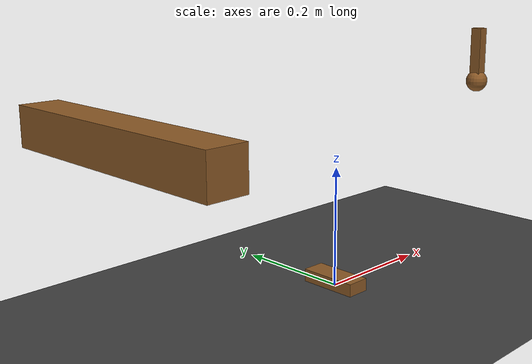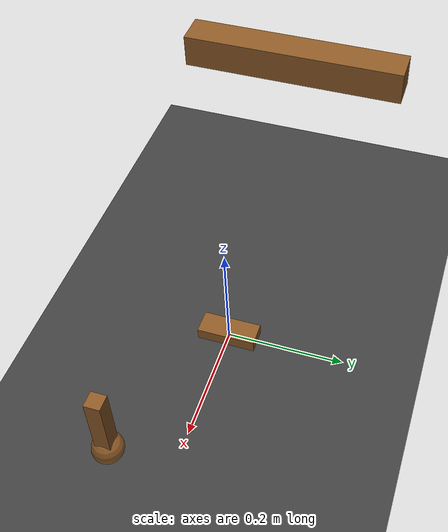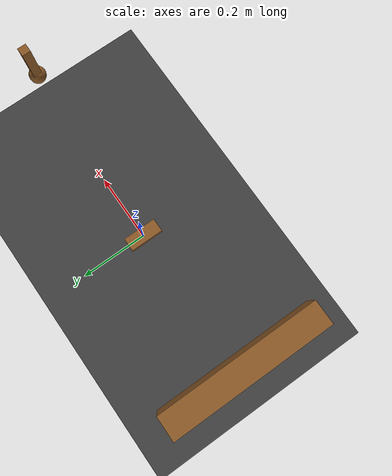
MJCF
<mujoco model="dog_scene">
  <include file="dog.xml"/>

  <statistic center="1 -0.8 1.1" extent=".3"/>

  <visual>
    <headlight diffuse="0.6 0.6 0.6" ambient="0.1 0.1 0.1" specular="0.9 0.9 0.9"/>
    <rgba haze="0.15 0.25 0.35 1"/>
    <global azimuth="140" elevation="-20"/>
  </visual>

  <asset>
    <texture builtin='checker' height='512' name='plane' rgb1='0.2 0.2 0.2' rgb2='0.3 0.3 0.3' type='2d' width='512'/>
    <texture builtin='gradient' height='128' rgb1='0.4 0.6 0.8' rgb2='0 0 0' type='skybox' width='128'/>
    <texture type="skybox" builtin="gradient" rgb1="1 1 1" rgb2="1 1 1" width="800" height="800"/>
    <texture type="2d" name="groundplane" builtin="checker" mark="edge" rgb1="1 1 1" rgb2="1 1 1"
      markrgb="0 0 0" width="300" height="300"/>
    <material name='plane' reflectance='0.000000' texrepeat='1 1' texture='plane' texuniform='true'/>
  </asset>

  <worldbody>
    <geom conaffinity="1" contype="1" condim="3" friction="1 .1 .1" name="floor" pos="0 0 0" size="40 40 0.125" type="plane" material="plane" rgba="0.5 0.5 0.5 1.0"/>
  </worldbody>
</mujoco>

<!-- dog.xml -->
<mujoco model="dog">
  <compiler angle="degree"/>
  <option timestep="0.001" gravity="0 0 -9.81"/>

  <default>
    <geom type="box" size="0.05 0.05 0.05" density="500" rgba="0.55 0.35 0.15 1"/>
  </default>

  <worldbody>
    <!-- Block 2x10x2 + Sphere: box bottom at sphere center -->
    <body name="block_sphere" pos="0.4 0 0.3">
      <freejoint name="block_sphere_free"/>
      <geom name="sphere_geom" type="sphere" size="0.02" pos="0 0 0" rgba="0.55 0.35 0.15 1"/>
      <geom name="block_geom" type="box" size="0.01 0.01 0.05" pos="0 0 0.05" rgba="0.55 0.35 0.15 1"/>
    </body>

    <!-- Block: 6cm x 40cm x 6cm (x x y x h) -->
    <body name="block2" pos="-0.4 0 0.3">
      <freejoint name="block2_free"/>
      <geom name="block2_geom" type="box" size="0.03 0.20 0.03" pos="0 0 0" rgba="0.55 0.35 0.15 1"/>
    </body>

    <!-- Block: 4cm x 10cm x 4cm (x x y x h) -->
    <body name="block3" pos="0 0 0">
      <freejoint name="block3_free"/>
      <geom name="block3_geom" type="box" size="0.02 0.05 0.02" pos="0 0 0" rgba="0.55 0.35 0.15 1"/>
    </body>

  </worldbody>
</mujoco>
